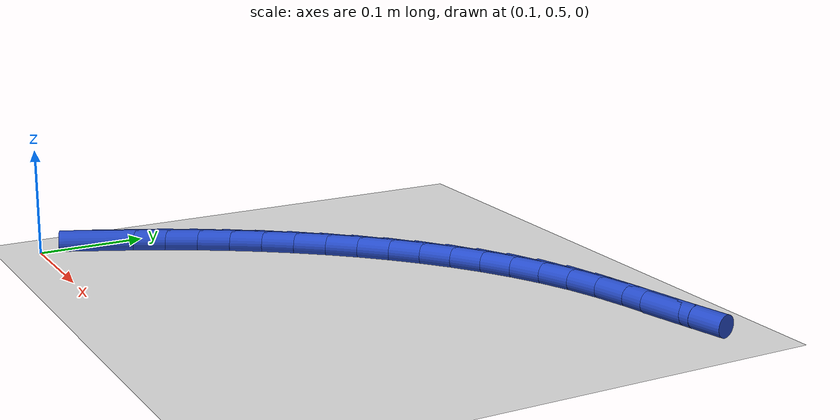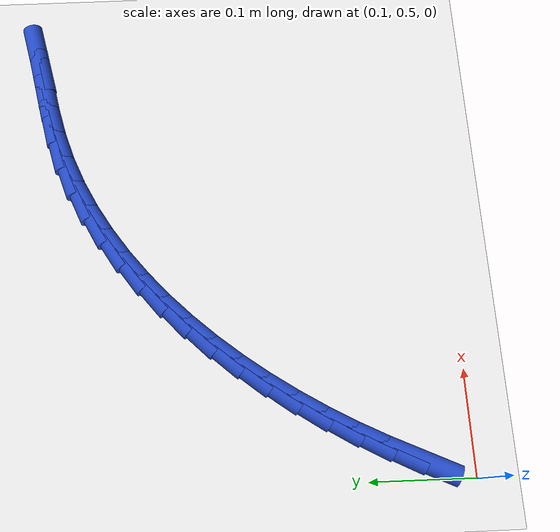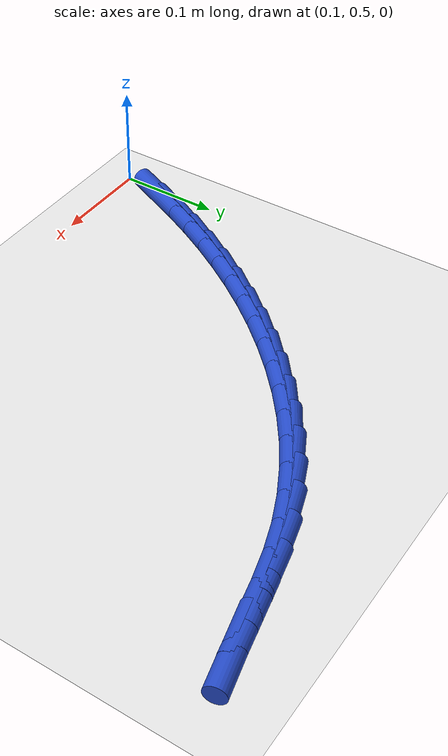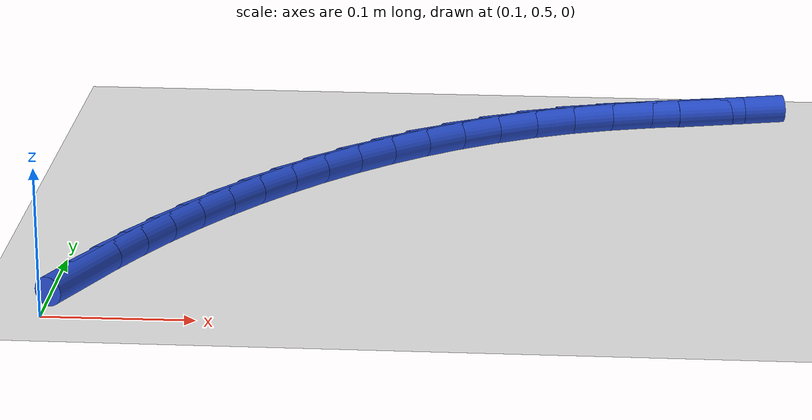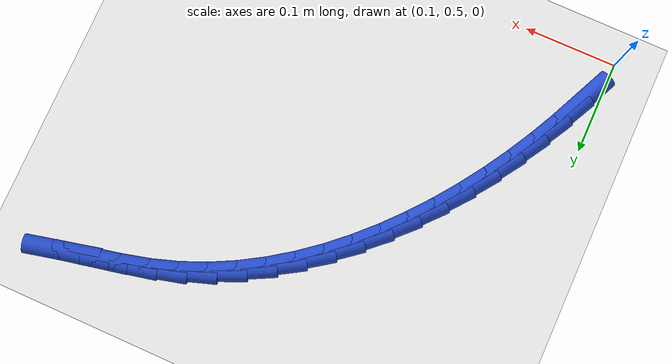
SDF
<sdf version="1.6">
 <world name="default">
  <model name="ground_plane">
   <static>1</static>
   <link name="link">
    <collision name="collision">
     <geometry><plane><normal>0 0 1</normal><size>100 100</size></plane></geometry>
     <surface><friction><ode><mu>100</mu><mu2>50</mu2></ode></friction></surface>
    </collision>
    <visual name="visual">
     <cast_shadows>0</cast_shadows>
     <geometry><plane><normal>0 0 1</normal><size>100 100</size></plane></geometry>
     <material>
      <script><uri>file://media/materials/scripts/gazebo.material</uri><name>Gazebo/WhiteGlow</name></script>
     </material>
    </visual>
   </link>
  </model>
  <model name="line">
   <link name="link_19">
    <pose>0.11868690040838828 0.5547025320119839 0.01 0 1.57 1.1420292014586377</pose>
    <collision name="collision">
     <geometry><cylinder><radius>0.01</radius><length>0.08</length></cylinder></geometry>
    </collision>
    <visual name="visual">
     <material>
      <script><name>Gazebo/Blue</name><uri>file://media/materials/scripts/gazebo.material</uri></script>
     </material>
     <geometry><cylinder><radius>0.01</radius><length>0.08</length></cylinder></geometry>
    </visual>
   </link>
   <link name="link_20">
    <pose>0.13133652575178312 0.5823743852867238 0.01 0 1.57 1.104446775173002</pose>
    <collision name="collision">
     <geometry><cylinder><radius>0.01</radius><length>0.08</length></cylinder></geometry>
    </collision>
    <visual name="visual">
     <material>
      <script><name>Gazebo/Blue</name><uri>file://media/materials/scripts/gazebo.material</uri></script>
     </material>
     <geometry><cylinder><radius>0.01</radius><length>0.08</length></cylinder></geometry>
    </visual>
   </link>
   <link name="link_21">
    <pose>0.14512775174061754 0.6097715227254505 0.01 0 1.57 1.065118207337849</pose>
    <collision name="collision">
     <geometry><cylinder><radius>0.01</radius><length>0.08</length></cylinder></geometry>
    </collision>
    <visual name="visual">
     <material>
      <script><name>Gazebo/Blue</name><uri>file://media/materials/scripts/gazebo.material</uri></script>
     </material>
     <geometry><cylinder><radius>0.01</radius><length>0.08</length></cylinder></geometry>
    </visual>
   </link>
   <link name="link_22">
    <pose>0.16010977241079943 0.6368296194724666 0.01 0 1.57 1.0245831309131712</pose>
    <collision name="collision">
     <geometry><cylinder><radius>0.01</radius><length>0.08</length></cylinder></geometry>
    </collision>
    <visual name="visual">
     <material>
      <script><name>Gazebo/Blue</name><uri>file://media/materials/scripts/gazebo.material</uri></script>
     </material>
     <geometry><cylinder><radius>0.01</radius><length>0.08</length></cylinder></geometry>
    </visual>
   </link>
   <link name="link_23">
    <pose>0.17626793475277147 0.663409610024551 0.01 0 1.57 0.9825336282329492</pose>
    <collision name="collision">
     <geometry><cylinder><radius>0.01</radius><length>0.08</length></cylinder></geometry>
    </collision>
    <visual name="visual">
     <material>
      <script><name>Gazebo/Blue</name><uri>file://media/materials/scripts/gazebo.material</uri></script>
     </material>
     <geometry><cylinder><radius>0.01</radius><length>0.08</length></cylinder></geometry>
    </visual>
   </link>
   <link name="link_24">
    <pose>0.1935814283915461 0.6893652209415141 0.01 0 1.57 0.9385887634483274</pose>
    <collision name="collision">
     <geometry><cylinder><radius>0.01</radius><length>0.08</length></cylinder></geometry>
    </collision>
    <visual name="visual">
     <material>
      <script><name>Gazebo/Blue</name><uri>file://media/materials/scripts/gazebo.material</uri></script>
     </material>
     <geometry><cylinder><radius>0.01</radius><length>0.08</length></cylinder></geometry>
    </visual>
   </link>
   <link name="link_25">
    <pose>0.21202944295213538 0.7145501787831661 0.01 0 1.57 0.8923652811128439</pose>
    <collision name="collision">
     <geometry><cylinder><radius>0.01</radius><length>0.08</length></cylinder></geometry>
    </collision>
    <visual name="visual">
     <material>
      <script><name>Gazebo/Blue</name><uri>file://media/materials/scripts/gazebo.material</uri></script>
     </material>
     <geometry><cylinder><radius>0.01</radius><length>0.08</length></cylinder></geometry>
    </visual>
   </link>
   <link name="link_26">
    <pose>0.23159116805955188 0.738818210109318 0.01 0 1.57 0.843477723860848</pose>
    <collision name="collision">
     <geometry><cylinder><radius>0.01</radius><length>0.08</length></cylinder></geometry>
    </collision>
    <visual name="visual">
     <material>
      <script><name>Gazebo/Blue</name><uri>file://media/materials/scripts/gazebo.material</uri></script>
     </material>
     <geometry><cylinder><radius>0.01</radius><length>0.08</length></cylinder></geometry>
    </visual>
   </link>
   <link name="link_27">
    <pose>0.2522457933388077 0.7620230414797797 0.01 0 1.57 0.7915424172978874</pose>
    <collision name="collision">
     <geometry><cylinder><radius>0.01</radius><length>0.08</length></cylinder></geometry>
    </collision>
    <visual name="visual">
     <material>
      <script><name>Gazebo/Blue</name><uri>file://media/materials/scripts/gazebo.material</uri></script>
     </material>
     <geometry><cylinder><radius>0.01</radius><length>0.08</length></cylinder></geometry>
    </visual>
   </link>
   <link name="link_28">
    <pose>0.2739725084149154 0.7840183994543622 0.01 0 1.57 0.7361864022791854</pose>
    <collision name="collision">
     <geometry><cylinder><radius>0.01</radius><length>0.08</length></cylinder></geometry>
    </collision>
    <visual name="visual">
     <material>
      <script><name>Gazebo/Blue</name><uri>file://media/materials/scripts/gazebo.material</uri></script>
     </material>
     <geometry><cylinder><radius>0.01</radius><length>0.08</length></cylinder></geometry>
    </visual>
   </link>
   <link name="link_29">
    <pose>0.29675050291288707 0.804658010592876 0.01 0 1.57 0.6770626002389787</pose>
    <collision name="collision">
     <geometry><cylinder><radius>0.01</radius><length>0.08</length></cylinder></geometry>
    </collision>
    <visual name="visual">
     <material>
      <script><name>Gazebo/Blue</name><uri>file://media/materials/scripts/gazebo.material</uri></script>
     </material>
     <geometry><cylinder><radius>0.01</radius><length>0.08</length></cylinder></geometry>
    </visual>
   </link>
   <link name="link_30">
    <pose>0.32055896645773513 0.8237956014551316 0.01 0 1.57 0.6138724626696549</pose>
    <collision name="collision">
     <geometry><cylinder><radius>0.01</radius><length>0.08</length></cylinder></geometry>
    </collision>
    <visual name="visual">
     <material>
      <script><name>Gazebo/Blue</name><uri>file://media/materials/scripts/gazebo.material</uri></script>
     </material>
     <geometry><cylinder><radius>0.01</radius><length>0.08</length></cylinder></geometry>
    </visual>
   </link>
   <link name="link_31">
    <pose>0.34537708867447187 0.8412848986009391 0.01 0 1.57 0.5463968542924611</pose>
    <collision name="collision">
     <geometry><cylinder><radius>0.01</radius><length>0.08</length></cylinder></geometry>
    </collision>
    <visual name="visual">
     <material>
      <script><name>Gazebo/Blue</name><uri>file://media/materials/scripts/gazebo.material</uri></script>
     </material>
     <geometry><cylinder><radius>0.01</radius><length>0.08</length></cylinder></geometry>
    </visual>
   </link>
   <link name="link_32">
    <pose>0.3711840591881098 0.8569796285901098 0.01 0 1.57 0.4745346650176418</pose>
    <collision name="collision">
     <geometry><cylinder><radius>0.01</radius><length>0.08</length></cylinder></geometry>
    </collision>
    <visual name="visual">
     <material>
      <script><name>Gazebo/Blue</name><uri>file://media/materials/scripts/gazebo.material</uri></script>
     </material>
     <geometry><cylinder><radius>0.01</radius><length>0.08</length></cylinder></geometry>
    </visual>
   </link>
   <link name="link_33">
    <pose>0.39795906762366096 0.8707335179824534 0.01 0 1.57 0.3983464035240839</pose>
    <collision name="collision">
     <geometry><cylinder><radius>0.01</radius><length>0.08</length></cylinder></geometry>
    </collision>
    <visual name="visual">
     <material>
      <script><name>Gazebo/Blue</name><uri>file://media/materials/scripts/gazebo.material</uri></script>
     </material>
     <geometry><cylinder><radius>0.01</radius><length>0.08</length></cylinder></geometry>
    </visual>
   </link>
   <link name="link_34">
    <pose>0.42568130360613776 0.8824002933377809 0.01 0 1.57 0.3184755314834646</pose>
    <collision name="collision">
     <geometry><cylinder><radius>0.01</radius><length>0.08</length></cylinder></geometry>
    </collision>
    <visual name="visual">
     <material>
      <script><name>Gazebo/Blue</name><uri>file://media/materials/scripts/gazebo.material</uri></script>
     </material>
     <geometry><cylinder><radius>0.01</radius><length>0.08</length></cylinder></geometry>
    </visual>
   </link>
   <link name="link_35">
    <pose>0.4543258373528002 0.8918443495432264 0.01 0 1.57 0.24999352496729918</pose>
    <collision name="collision">
     <geometry><cylinder><radius>0.01</radius><length>0.08</length></cylinder></geometry>
    </collision>
    <visual name="visual">
     <material>
      <script><name>Gazebo/Blue</name><uri>file://media/materials/scripts/gazebo.material</uri></script>
     </material>
     <geometry><cylinder><radius>0.01</radius><length>0.08</length></cylinder></geometry>
    </visual>
   </link>
   <link name="link_36">
    <pose>0.48370698933660045 0.8993463866910646 0.01 0 1.57 0.21151882604593314</pose>
    <collision name="collision">
     <geometry><cylinder><radius>0.01</radius><length>0.08</length></cylinder></geometry>
    </collision>
    <visual name="visual">
     <material>
      <script><name>Gazebo/Blue</name><uri>file://media/materials/scripts/gazebo.material</uri></script>
     </material>
     <geometry><cylinder><radius>0.01</radius><length>0.08</length></cylinder></geometry>
    </visual>
   </link>
   <link name="link_37">
    <pose>0.5134299081417895 0.9057288123979677 0.01 0 1.57 0.20355974306977132</pose>
    <collision name="collision">
     <geometry><cylinder><radius>0.01</radius><length>0.08</length></cylinder></geometry>
    </collision>
    <visual name="visual">
     <material>
      <script><name>Gazebo/Blue</name><uri>file://media/materials/scripts/gazebo.material</uri></script>
     </material>
     <geometry><cylinder><radius>0.01</radius><length>0.08</length></cylinder></geometry>
    </visual>
   </link>
   <link name="link_38">
    <pose>0.5430857275500556 0.9118503294254631 0.01 0 1.57 0.2263269611646624</pose>
    <collision name="collision">
     <geometry><cylinder><radius>0.01</radius><length>0.08</length></cylinder></geometry>
    </collision>
    <visual name="visual">
     <material>
      <script><name>Gazebo/Blue</name><uri>file://media/materials/scripts/gazebo.material</uri></script>
     </material>
     <geometry><cylinder><radius>0.01</radius><length>0.08</length></cylinder></geometry>
    </visual>
   </link>
  </model>
 </world>
</sdf>
